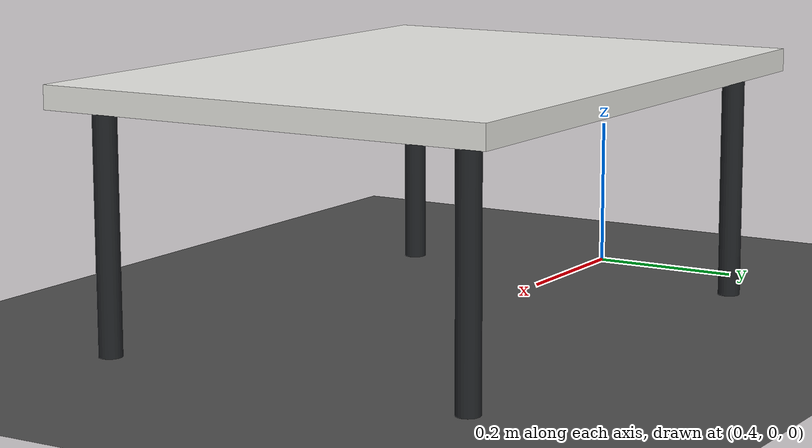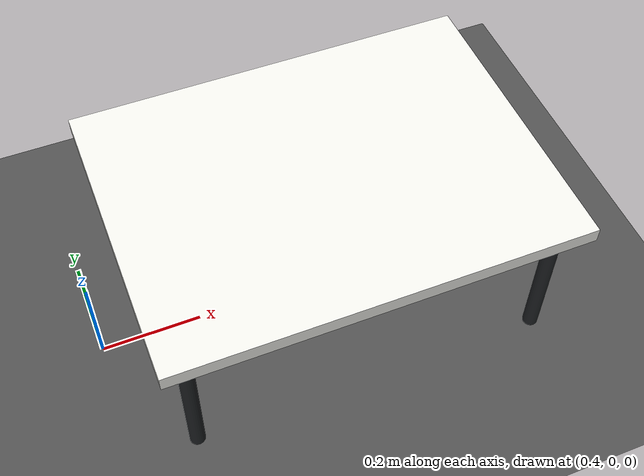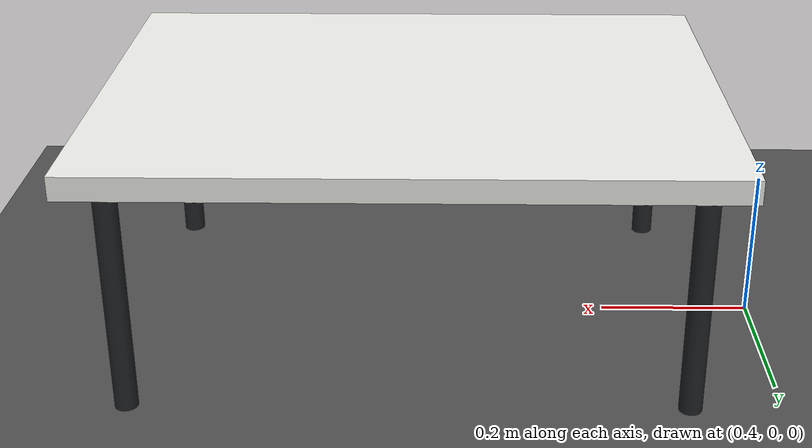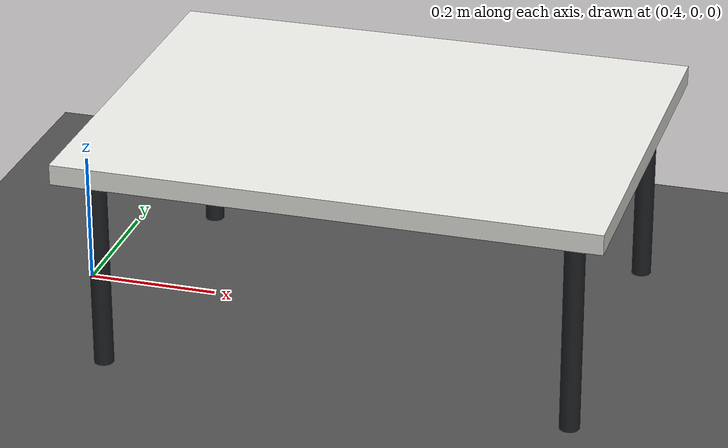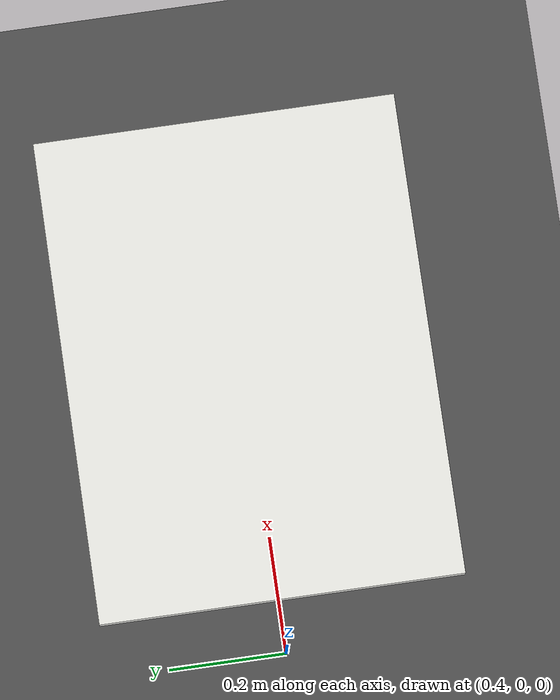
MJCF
<mujoco model="scene_common">
  <visual>
    <headlight ambient="0.45 0.45 0.45" diffuse="0.55 0.55 0.55" specular="0 0 0"/>
    <rgba haze="0.7 0.7 0.7 1"/>
    <global azimuth="120" elevation="-20"/>
  </visual>

  <asset>
    <texture type="skybox" builtin="flat" rgb1="0.92 0.92 0.92"
      width="512" height="3072"/>
    <texture type="2d" name="groundplane" builtin="checker" mark="edge"
      rgb1="0.31 0.31 0.31" rgb2="0.31 0.31 0.31" markrgb="0.78 0.78 0.78"
      width="300" height="300"/>
    <material name="groundplane" texture="groundplane" texuniform="true"
      texrepeat="2 2" reflectance="0.05"/>
    <material name="table_top" rgba="0.93 0.93 0.91 1" roughness="0.55"/>
    <material name="table_leg" rgba="0.13 0.14 0.15 1" roughness="0.35" metallic="0.65"/>
  </asset>

  <worldbody>
    <light pos="0 0 1.5" dir="0 0 -1" directional="true"/>
    <geom name="floor" size="0 0 0.05" type="plane" material="groundplane"/>

    <body name="table" pos="0.865 0 0.333">
      <geom name="table_top" type="box" pos="0 0 -0.015" size="0.4 0.3 0.015"
        material="table_top" contype="0" conaffinity="0"/>
      <geom name="table_leg_0" type="cylinder" pos="0.35 0.25 -0.1815"
        size="0.015 0.1515" material="table_leg" contype="0" conaffinity="0"/>
      <geom name="table_leg_1" type="cylinder" pos="0.35 -0.25 -0.1815"
        size="0.015 0.1515" material="table_leg" contype="0" conaffinity="0"/>
      <geom name="table_leg_2" type="cylinder" pos="-0.35 0.25 -0.1815"
        size="0.015 0.1515" material="table_leg" contype="0" conaffinity="0"/>
      <geom name="table_leg_3" type="cylinder" pos="-0.35 -0.25 -0.1815"
        size="0.015 0.1515" material="table_leg" contype="0" conaffinity="0"/>
    </body>

    <camera name="policy_replay_front" pos="-1.7 -0.7 0.833" fovy="35"
      xyaxes="0.536875492 -0.843661488 0 0.218705647 0.139176321 0.965813086"/>
  </worldbody>
</mujoco>
